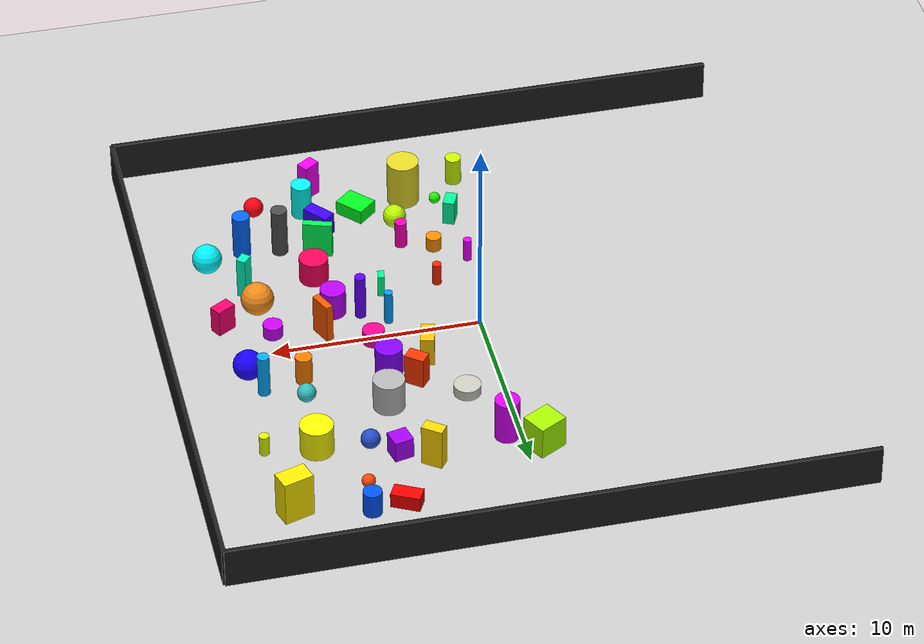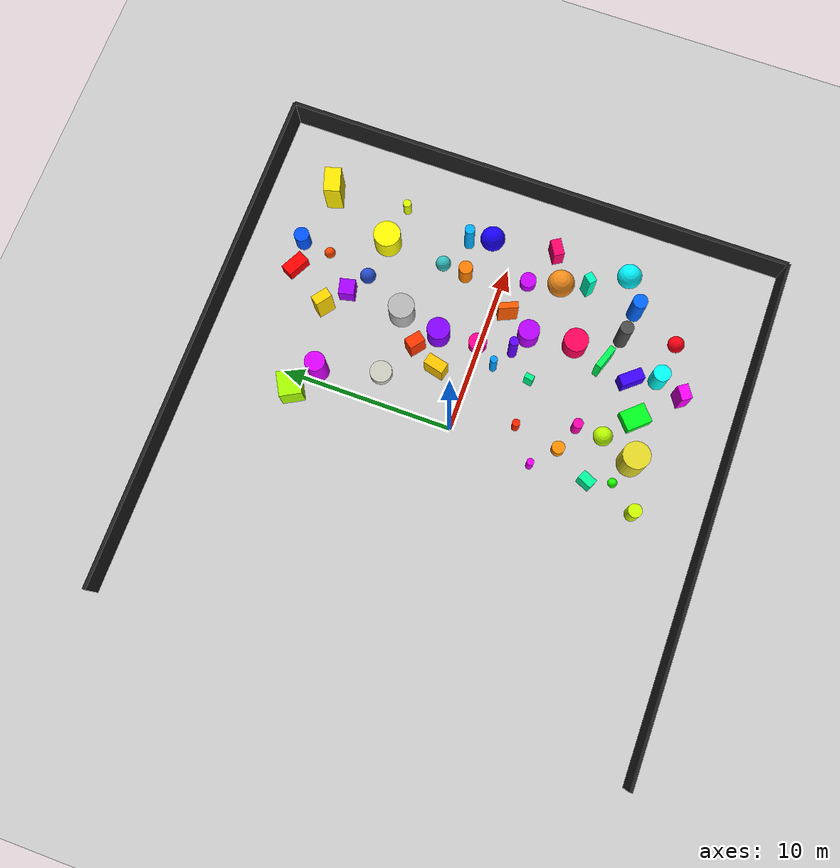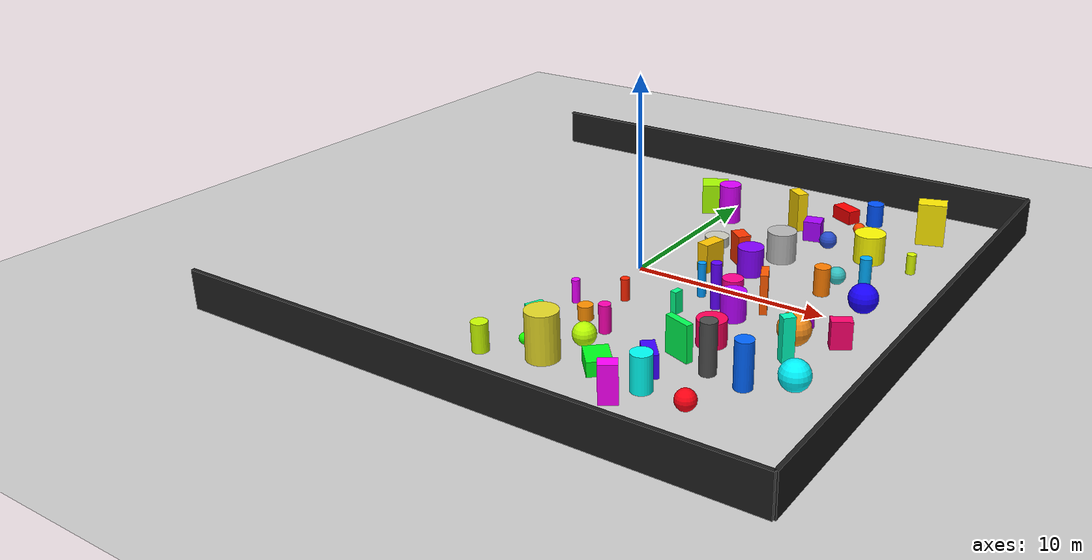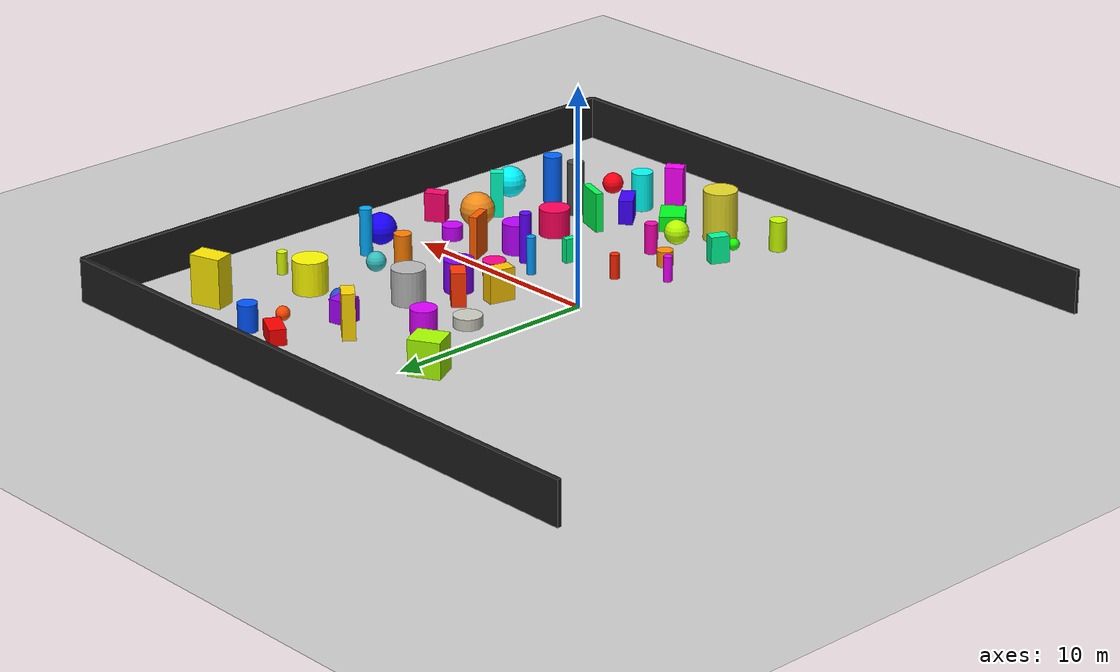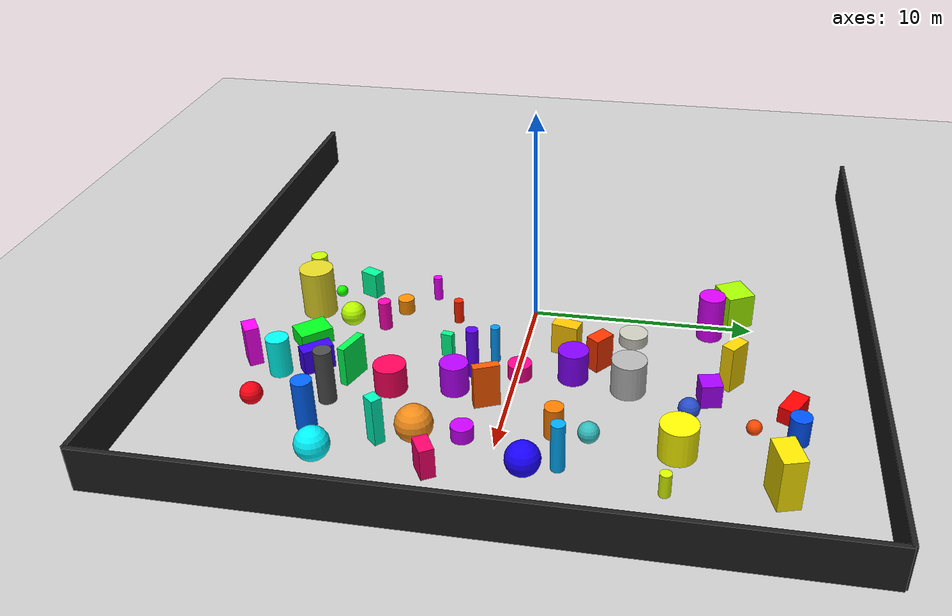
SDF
<sdf version="1.6">
 <world name="colorful_obstacle_world">
  <include><uri>model://ground_plane</uri></include>
  <include><uri>model://sun</uri></include>
  <model name="wall_north">
   <static>true</static>
   <pose>15 0 1.0 0 0 0</pose>
   <link name="link">
    <collision name="c"><geometry><box><size>0.2 30 2.0</size></box></geometry></collision>
    <visual name="v">
     <geometry><box><size>0.2 30 2.0</size></box></geometry>
     <material>
      <script><uri>file://media/materials/scripts/gazebo.material</uri><name>Gazebo/Black</name></script>
     </material>
    </visual>
   </link>
  </model>
  <model name="wall_east">
   <static>true</static>
   <pose>0 15 1.0 0 0 0</pose>
   <link name="link">
    <collision name="c"><geometry><box><size>30 0.2 2.0</size></box></geometry></collision>
    <visual name="v">
     <geometry><box><size>30 0.2 2.0</size></box></geometry>
     <material>
      <script><uri>file://media/materials/scripts/gazebo.material</uri><name>Gazebo/Black</name></script>
     </material>
    </visual>
   </link>
  </model>
  <model name="wall_west">
   <static>true</static>
   <pose>0 -15 1.0 0 0 0</pose>
   <link name="link">
    <collision name="c"><geometry><box><size>30 0.2 2.0</size></box></geometry></collision>
    <visual name="v">
     <geometry><box><size>30 0.2 2.0</size></box></geometry>
     <material>
      <script><uri>file://media/materials/scripts/gazebo.material</uri><name>Gazebo/Black</name></script>
     </material>
    </visual>
   </link>
  </model>
  <model name="obstacle_2">
   <static>true</static>
   <pose>6.871002443166621 7.462403809613775 0.4595691033934538 0 0 0</pose>
   <link name="link">
    <collision name="c"><geometry><sphere><radius>0.4595691033934538</radius></sphere></geometry></collision>
    <visual name="v">
     <geometry><sphere><radius>0.4595691033934538</radius></sphere></geometry>
     <material>
      <script><uri>file://media/materials/scripts/gazebo.material</uri><name>Gazebo/Blue</name></script>
     </material>
    </visual>
   </link>
  </model>
  <model name="obstacle_3">
   <static>true</static>
   <pose>1.5164349646483188 -10.133740081631483 1.1599548474359662 0 0 0</pose>
   <link name="link">
    <collision name="c">
     <geometry>
      <cylinder><radius>0.7750553635431889</radius><length>2.3199096948719324</length></cylinder>
     </geometry>
    </collision>
    <visual name="v">
     <geometry>
      <cylinder><radius>0.7750553635431889</radius><length>2.3199096948719324</length></cylinder>
     </geometry>
     <material>
      <script><uri>file://media/materials/scripts/gazebo.material</uri><name>Gazebo/Yellow</name></script>
     </material>
    </visual>
   </link>
  </model>
  <model name="obstacle_5">
   <static>true</static>
   <pose>10.052263835685423 -3.2112918898191385 0.787801593466783 0 0 0</pose>
   <link name="link">
    <collision name="c"><geometry><sphere><radius>0.787801593466783</radius></sphere></geometry></collision>
    <visual name="v">
     <geometry><sphere><radius>0.787801593466783</radius></sphere></geometry>
     <material>
      <script><uri>file://media/materials/scripts/gazebo.material</uri><name>Gazebo/Orange</name></script>
     </material>
    </visual>
   </link>
  </model>
  <model name="obstacle_6">
   <static>true</static>
   <pose>9.058558225604688 3.6154478280537017 0.4456063688251496 0 0 0</pose>
   <link name="link">
    <collision name="c"><geometry><sphere><radius>0.4456063688251496</radius></sphere></geometry></collision>
    <visual name="v">
     <geometry><sphere><radius>0.4456063688251496</radius></sphere></geometry>
     <material>
      <script><uri>file://media/materials/scripts/gazebo.material</uri><name>Gazebo/Turquoise</name></script>
     </material>
    </visual>
   </link>
  </model>
  <model name="obstacle_8">
   <static>true</static>
   <pose>8.147113461541874 -7.489553556831666 1.2487800928988428 0 0 0</pose>
   <link name="link">
    <collision name="c">
     <geometry>
      <cylinder><radius>0.3872695943996788</radius><length>2.4975601857976857</length></cylinder>
     </geometry>
    </collision>
    <visual name="v">
     <geometry>
      <cylinder><radius>0.3872695943996788</radius><length>2.4975601857976857</length></cylinder>
     </geometry>
     <material>
      <script><uri>file://media/materials/scripts/gazebo.material</uri><name>Gazebo/DarkGrey</name></script>
     </material>
    </visual>
   </link>
  </model>
  <model name="obstacle_12">
   <static>true</static>
   <pose>1.7315914127342822 4.750978672225656 0.2542465124365567 0 0 0</pose>
   <link name="link">
    <collision name="c">
     <geometry>
      <cylinder><radius>0.6424154166695375</radius><length>0.5084930248731134</length></cylinder>
     </geometry>
    </collision>
    <visual name="v">
     <geometry>
      <cylinder><radius>0.6424154166695375</radius><length>0.5084930248731134</length></cylinder>
     </geometry>
     <material>
      <script><uri>file://media/materials/scripts/gazebo.material</uri><name>Gazebo/PaintedWall</name></script>
     </material>
    </visual>
   </link>
  </model>
  <model name="obstacle_13">
   <static>true</static>
   <pose>5.447621350147745 4.850557821663433 0.7923545132728254 0 0 0</pose>
   <link name="link">
    <collision name="c">
     <geometry>
      <cylinder><radius>0.7523293349741393</radius><length>1.5847090265456507</length></cylinder>
     </geometry>
    </collision>
    <visual name="v">
     <geometry>
      <cylinder><radius>0.7523293349741393</radius><length>1.5847090265456507</length></cylinder>
     </geometry>
     <material>
      <script><uri>file://media/materials/scripts/gazebo.material</uri><name>Gazebo/BuildingFrame</name></script>
     </material>
    </visual>
   </link>
  </model>
  <model name="obstacle_15">
   <static>true</static>
   <pose>6.093371528538579 11.665953664885667 0.37245010629081987 0 0 1.0901495579602125</pose>
   <link name="link">
    <collision name="c">
     <geometry><box><size>0.743070686655676 1.3814643568321343 0.7449002125816397</size></box></geometry>
    </collision>
    <visual name="v">
     <geometry><box><size>0.743070686655676 1.3814643568321343 0.7449002125816397</size></box></geometry>
     <material><ambient>1 0.0 0 1.0</ambient><diffuse>1 0.0 0 1.0</diffuse></material>
    </visual>
   </link>
  </model>
  <model name="obstacle_17">
   <static>true</static>
   <pose>1.325772126019352 -3.4354408230898734 0.5628320105586656 0 0 0</pose>
   <link name="link">
    <collision name="c">
     <geometry>
      <cylinder><radius>0.22051269177308558</radius><length>1.1256640211173312</length></cylinder>
     </geometry>
    </collision>
    <visual name="v">
     <geometry>
      <cylinder><radius>0.22051269177308558</radius><length>1.1256640211173312</length></cylinder>
     </geometry>
     <material>
      <ambient>1 0.14117647058823524 0 1.0</ambient>
      <diffuse>1 0.14117647058823524 0 1.0</diffuse>
     </material>
    </visual>
   </link>
  </model>
  <model name="obstacle_18">
   <static>true</static>
   <pose>3.826197518115052 3.4372369911886267 0.7883732737479082 0 0 0.8991267906517547</pose>
   <link name="link">
    <collision name="c">
     <geometry><box><size>0.663344641370287 0.9712194446429214 1.5767465474958164</size></box></geometry>
    </collision>
    <visual name="v">
     <geometry><box><size>0.663344641370287 0.9712194446429214 1.5767465474958164</size></box></geometry>
     <material>
      <ambient>1 0.21176470588235297 0 1.0</ambient>
      <diffuse>1 0.21176470588235297 0 1.0</diffuse>
     </material>
    </visual>
   </link>
  </model>
  <model name="obstacle_19">
   <static>true</static>
   <pose>7.515463405429507 10.088654732925587 0.3214041588658102 0 0 0</pose>
   <link name="link">
    <collision name="c"><geometry><sphere><radius>0.3214041588658102</radius></sphere></geometry></collision>
    <visual name="v">
     <geometry><sphere><radius>0.3214041588658102</radius></sphere></geometry>
     <material>
      <ambient>1 0.2823529411764706 0 1.0</ambient>
      <diffuse>1 0.2823529411764706 0 1.0</diffuse>
     </material>
    </visual>
   </link>
  </model>
  <model name="obstacle_20">
   <static>true</static>
   <pose>7.366288027645126 -0.8656854448823772 0.995039706988569 0 0 0.41884372606489045</pose>
   <link name="link">
    <collision name="c">
     <geometry><box><size>0.36397490283762624 1.1260823554076904 1.990079413977138</size></box></geometry>
    </collision>
    <visual name="v">
     <geometry><box><size>0.36397490283762624 1.1260823554076904 1.990079413977138</size></box></geometry>
     <material>
      <ambient>1 0.3529411764705882 0 1.0</ambient>
      <diffuse>1 0.3529411764705882 0 1.0</diffuse>
     </material>
    </visual>
   </link>
  </model>
  <model name="obstacle_22">
   <static>true</static>
   <pose>8.902482420358275 2.2012407443148767 0.7141178315493268 0 0 0</pose>
   <link name="link">
    <collision name="c">
     <geometry>
      <cylinder><radius>0.3990837151185682</radius><length>1.4282356630986537</length></cylinder>
     </geometry>
    </collision>
    <visual name="v">
     <geometry>
      <cylinder><radius>0.3990837151185682</radius><length>1.4282356630986537</length></cylinder>
     </geometry>
     <material>
      <ambient>1 0.49411764705882355 0 1.0</ambient>
      <diffuse>1 0.49411764705882355 0 1.0</diffuse>
     </material>
    </visual>
   </link>
  </model>
  <model name="obstacle_23">
   <static>true</static>
   <pose>0.8940980374158798 -6.082508689060838 0.35900783084016674 0 0 0</pose>
   <link name="link">
    <collision name="c">
     <geometry>
      <cylinder><radius>0.3734763596124898</radius><length>0.7180156616803335</length></cylinder>
     </geometry>
    </collision>
    <visual name="v">
     <geometry>
      <cylinder><radius>0.3734763596124898</radius><length>0.7180156616803335</length></cylinder>
     </geometry>
     <material>
      <ambient>1 0.5647058823529412 0 1.0</ambient>
      <diffuse>1 0.5647058823529412 0 1.0</diffuse>
     </material>
    </visual>
   </link>
  </model>
  <model name="obstacle_26">
   <static>true</static>
   <pose>2.9629941372433244 1.8703506917924901 0.7503509435351398 0 0 1.3299789343963184</pose>
   <link name="link">
    <collision name="c">
     <geometry><box><size>1.2004264051913236 0.6605551870482091 1.5007018870702795</size></box></geometry>
    </collision>
    <visual name="v">
     <geometry><box><size>1.2004264051913236 0.6605551870482091 1.5007018870702795</size></box></geometry>
     <material>
      <ambient>1 0.7764705882352941 0 1.0</ambient>
      <diffuse>1 0.7764705882352941 0 1.0</diffuse>
     </material>
    </visual>
   </link>
  </model>
  <model name="obstacle_27">
   <static>true</static>
   <pose>4.296089687671092 9.156674425913245 1.0561367411559621 0 0 0.9294674477253762</pose>
   <link name="link">
    <collision name="c">
     <geometry><box><size>0.5837977649261117 1.017943470494364 2.1122734823119242</size></box></geometry>
    </collision>
    <visual name="v">
     <geometry><box><size>0.5837977649261117 1.017943470494364 2.1122734823119242</size></box></geometry>
     <material>
      <ambient>1 0.8470588235294118 0 1.0</ambient>
      <diffuse>1 0.8470588235294118 0 1.0</diffuse>
     </material>
    </visual>
   </link>
  </model>
  <model name="obstacle_28">
   <static>true</static>
   <pose>11.091518896146312 11.107371873234488 1.133406417208728 0 0 1.8752800478882998</pose>
   <link name="link">
    <collision name="c">
     <geometry><box><size>0.9547894291016981 1.4620261514298927 2.266812834417456</size></box></geometry>
    </collision>
    <visual name="v">
     <geometry><box><size>0.9547894291016981 1.4620261514298927 2.266812834417456</size></box></geometry>
     <material>
      <ambient>1 0.9176470588235295 0 1.0</ambient>
      <diffuse>1 0.9176470588235295 0 1.0</diffuse>
     </material>
    </visual>
   </link>
  </model>
  <model name="obstacle_29">
   <static>true</static>
   <pose>9.289551411786388 7.136378456929336 0.7581892050764009 0 0 0</pose>
   <link name="link">
    <collision name="c">
     <geometry>
      <cylinder><radius>0.7852694467993337</radius><length>1.5163784101528017</length></cylinder>
     </geometry>
    </collision>
    <visual name="v">
     <geometry>
      <cylinder><radius>0.7852694467993337</radius><length>1.5163784101528017</length></cylinder>
     </geometry>
     <material>
      <ambient>1 0.9882352941176471 0 1.0</ambient>
      <diffuse>1 0.9882352941176471 0 1.0</diffuse>
     </material>
    </visual>
   </link>
  </model>
  <model name="obstacle_31">
   <static>true</static>
   <pose>11.655328918172131 6.79011432449353 0.5142657875563611 0 0 0</pose>
   <link name="link">
    <collision name="c">
     <geometry>
      <cylinder><radius>0.23796573550268202</radius><length>1.0285315751127222</length></cylinder>
     </geometry>
    </collision>
    <visual name="v">
     <geometry>
      <cylinder><radius>0.23796573550268202</radius><length>1.0285315751127222</length></cylinder>
     </geometry>
     <material>
      <ambient>0.8705882352941177 1 0 1.0</ambient>
      <diffuse>0.8705882352941177 1 0 1.0</diffuse>
     </material>
    </visual>
   </link>
  </model>
  <model name="obstacle_32">
   <static>true</static>
   <pose>-1.1963006581830182 -11.046775636713917 0.7040476604807189 0 0 0</pose>
   <link name="link">
    <collision name="c">
     <geometry>
      <cylinder><radius>0.3926136347743306</radius><length>1.4080953209614377</length></cylinder>
     </geometry>
    </collision>
    <visual name="v">
     <geometry>
      <cylinder><radius>0.3926136347743306</radius><length>1.4080953209614377</length></cylinder>
     </geometry>
     <material><ambient>0.8 1 0 1.0</ambient><diffuse>0.8 1 0 1.0</diffuse></material>
    </visual>
   </link>
  </model>
  <model name="obstacle_33">
   <static>true</static>
   <pose>2.3498432448573077 -8.221245884879233 0.5576420701433116 0 0 0</pose>
   <link name="link">
    <collision name="c"><geometry><sphere><radius>0.5576420701433116</radius></sphere></geometry></collision>
    <visual name="v">
     <geometry><sphere><radius>0.5576420701433116</radius></sphere></geometry>
     <material>
      <ambient>0.7294117647058824 1 0 1.0</ambient>
      <diffuse>0.7294117647058824 1 0 1.0</diffuse>
     </material>
    </visual>
   </link>
  </model>
  <model name="obstacle_34">
   <static>true</static>
   <pose>-0.8488032611807377 9.146121246037993 0.8164870306332044 0 0 2.071465376063041</pose>
   <link name="link">
    <collision name="c">
     <geometry><box><size>1.2835717399054458 1.4413751539168993 1.6329740612664088</size></box></geometry>
    </collision>
    <visual name="v">
     <geometry><box><size>1.2835717399054458 1.4413751539168993 1.6329740612664088</size></box></geometry>
     <material>
      <ambient>0.6588235294117648 1 0 1.0</ambient>
      <diffuse>0.6588235294117648 1 0 1.0</diffuse>
     </material>
    </visual>
   </link>
  </model>
  <model name="obstacle_42">
   <static>true</static>
   <pose>0.07716506899742726 -9.536346604121363 0.27598091387926027 0 0 0</pose>
   <link name="link">
    <collision name="c"><geometry><sphere><radius>0.27598091387926027</radius></sphere></geometry></collision>
    <visual name="v">
     <geometry><sphere><radius>0.27598091387926027</radius></sphere></geometry>
     <material>
      <ambient>0.09411764705882342 1 0 1.0</ambient>
      <diffuse>0.09411764705882342 1 0 1.0</diffuse>
     </material>
    </visual>
   </link>
  </model>
  <model name="obstacle_45">
   <static>true</static>
   <pose>3.9917619160250766 -9.601662222613902 0.3567389897024016 0 0 0.7345310204684006</pose>
   <link name="link">
    <collision name="c">
     <geometry><box><size>1.1526904756320582 1.4971055487193372 0.7134779794048032</size></box></geometry>
    </collision>
    <visual name="v">
     <geometry><box><size>1.1526904756320582 1.4971055487193372 0.7134779794048032</size></box></geometry>
     <material>
      <ambient>0 1 0.11764705882352944 1.0</ambient>
      <diffuse>0 1 0.11764705882352944 1.0</diffuse>
     </material>
    </visual>
   </link>
  </model>
  <model name="obstacle_48">
   <static>true</static>
   <pose>6.392817961900366 -6.9138240735148155 0.9151023032492855 0 0 1.2368804177506638</pose>
   <link name="link">
    <collision name="c">
     <geometry><box><size>0.3502752513106955 1.4151033486295854 1.830204606498571</size></box></geometry>
    </collision>
    <visual name="v">
     <geometry><box><size>0.3502752513106955 1.4151033486295854 1.830204606498571</size></box></geometry>
     <material>
      <ambient>0 1 0.32941176470588207 1.0</ambient>
      <diffuse>0 1 0.32941176470588207 1.0</diffuse>
     </material>
    </visual>
   </link>
  </model>
  <model name="obstacle_51">
   <static>true</static>
   <pose>4.077914817872937 -3.284554960914601 0.5649009635435585 0 0 1.3905449700509573</pose>
   <link name="link">
    <collision name="c">
     <geometry><box><size>0.5074693560003101 0.3232242561120787 1.129801927087117</size></box></geometry>
    </collision>
    <visual name="v">
     <geometry><box><size>0.5074693560003101 0.3232242561120787 1.129801927087117</size></box></geometry>
     <material>
      <ambient>0 1 0.5411764705882351 1.0</ambient>
      <diffuse>0 1 0.5411764705882351 1.0</diffuse>
     </material>
    </visual>
   </link>
  </model>
  <model name="obstacle_52">
   <static>true</static>
   <pose>-0.3830246344873718 -8.103981192189966 0.6249427702991468 0 0 1.151285472236181</pose>
   <link name="link">
    <collision name="c">
     <geometry><box><size>0.8719247517122375 0.5614017266017137 1.2498855405982936</size></box></geometry>
    </collision>
    <visual name="v">
     <geometry><box><size>0.8719247517122375 0.5614017266017137 1.2498855405982936</size></box></geometry>
     <material><ambient>0 1 0.611764705882353 1.0</ambient><diffuse>0 1 0.611764705882353 1.0</diffuse></material>
    </visual>
   </link>
  </model>
  <model name="obstacle_54">
   <static>true</static>
   <pose>10.39667865920753 -4.697654513797622 1.0714210839102452 0 0 0.8520475784267526</pose>
   <link name="link">
    <collision name="c">
     <geometry><box><size>0.5875439115576166 0.46824335077528934 2.1428421678204903</size></box></geometry>
    </collision>
    <visual name="v">
     <geometry><box><size>0.5875439115576166 0.46824335077528934 2.1428421678204903</size></box></geometry>
     <material>
      <ambient>0 1 0.7529411764705882 1.0</ambient>
      <diffuse>0 1 0.7529411764705882 1.0</diffuse>
     </material>
    </visual>
   </link>
  </model>
  <model name="obstacle_57">
   <static>true</static>
   <pose>6.55626907448611 -10.151503224764202 0.8860309235307883 0 0 0</pose>
   <link name="link">
    <collision name="c">
     <geometry>
      <cylinder><radius>0.4943462938816528</radius><length>1.7720618470615765</length></cylinder>
     </geometry>
    </collision>
    <visual name="v">
     <geometry>
      <cylinder><radius>0.4943462938816528</radius><length>1.7720618470615765</length></cylinder>
     </geometry>
     <material>
      <ambient>0 1 0.9647058823529409 1.0</ambient>
      <diffuse>0 1 0.9647058823529409 1.0</diffuse>
     </material>
    </visual>
   </link>
  </model>
  <model name="obstacle_58">
   <static>true</static>
   <pose>11.81521027622679 -6.79780234941678 0.71075358204357 0 0 0</pose>
   <link name="link">
    <collision name="c"><geometry><sphere><radius>0.71075358204357</radius></sphere></geometry></collision>
    <visual name="v">
     <geometry><sphere><radius>0.71075358204357</radius></sphere></geometry>
     <material>
      <ambient>0 0.9647058823529409 1 1.0</ambient>
      <diffuse>0 0.9647058823529409 1 1.0</diffuse>
     </material>
    </visual>
   </link>
  </model>
  <model name="obstacle_62">
   <static>true</static>
   <pose>10.86966246834017 2.653134248573748 1.0889673021690114 0 0 0</pose>
   <link name="link">
    <collision name="c">
     <geometry><cylinder><radius>0.28840340817974</radius><length>2.1779346043380228</length></cylinder></geometry>
    </collision>
    <visual name="v">
     <geometry><cylinder><radius>0.28840340817974</radius><length>2.1779346043380228</length></cylinder></geometry>
     <material>
      <ambient>0 0.6823529411764704 1 1.0</ambient>
      <diffuse>0 0.6823529411764704 1 1.0</diffuse>
     </material>
    </visual>
   </link>
  </model>
  <model name="obstacle_63">
   <static>true</static>
   <pose>4.180050139833689 -1.116981090824055 0.8720600206636925 0 0 0</pose>
   <link name="link">
    <collision name="c">
     <geometry>
      <cylinder><radius>0.20662524482144828</radius><length>1.744120041327385</length></cylinder>
     </geometry>
    </collision>
    <visual name="v">
     <geometry>
      <cylinder><radius>0.20662524482144828</radius><length>1.744120041327385</length></cylinder>
     </geometry>
     <material><ambient>0 0.611764705882353 1 1.0</ambient><diffuse>0 0.611764705882353 1 1.0</diffuse></material>
    </visual>
   </link>
  </model>
  <model name="obstacle_66">
   <static>true</static>
   <pose>9.956024501401984 -7.741410709271314 1.1322637261439348 0 0 0</pose>
   <link name="link">
    <collision name="c">
     <geometry>
      <cylinder><radius>0.42690086424895435</radius><length>2.2645274522878696</length></cylinder>
     </geometry>
    </collision>
    <visual name="v">
     <geometry>
      <cylinder><radius>0.42690086424895435</radius><length>2.2645274522878696</length></cylinder>
     </geometry>
     <material>
      <ambient>0 0.3999999999999999 1 1.0</ambient>
      <diffuse>0 0.3999999999999999 1 1.0</diffuse>
     </material>
    </visual>
   </link>
  </model>
  <model name="obstacle_67">
   <static>true</static>
   <pose>7.701651474479945 11.822632685833373 0.6226204214526337 0 0 0</pose>
   <link name="link">
    <collision name="c">
     <geometry>
      <cylinder><radius>0.4422726943481152</radius><length>1.2452408429052675</length></cylinder>
     </geometry>
    </collision>
    <visual name="v">
     <geometry>
      <cylinder><radius>0.4422726943481152</radius><length>1.2452408429052675</length></cylinder>
     </geometry>
     <material>
      <ambient>0 0.32941176470588207 1 1.0</ambient>
      <diffuse>0 0.32941176470588207 1 1.0</diffuse>
     </material>
    </visual>
   </link>
  </model>
  <model name="obstacle_73">
   <static>true</static>
   <pose>11.362410627917527 1.383218486728655 0.7200730133046285 0 0 0</pose>
   <link name="link">
    <collision name="c"><geometry><sphere><radius>0.7200730133046285</radius></sphere></geometry></collision>
    <visual name="v">
     <geometry><sphere><radius>0.7200730133046285</radius></sphere></geometry>
     <material>
      <ambient>0.09411764705882408 0 1 1.0</ambient>
      <diffuse>0.09411764705882408 0 1 1.0</diffuse>
     </material>
    </visual>
   </link>
  </model>
  <model name="obstacle_75">
   <static>true</static>
   <pose>5.997164546282175 -8.671655642357672 0.5695548599451673 0 0 0.696397823950396</pose>
   <link name="link">
    <collision name="c">
     <geometry><box><size>0.6592247768751287 1.3839385602685468 1.1391097198903346</size></box></geometry>
    </collision>
    <visual name="v">
     <geometry><box><size>0.6592247768751287 1.3839385602685468 1.1391097198903346</size></box></geometry>
     <material>
      <ambient>0.23529411764705888 0 1 1.0</ambient>
      <diffuse>0.23529411764705888 0 1 1.0</diffuse>
     </material>
    </visual>
   </link>
  </model>
  <model name="obstacle_77">
   <static>true</static>
   <pose>5.373204367666254 -1.8659062859000564 1.1562421959999991 0 0 0</pose>
   <link name="link">
    <collision name="c">
     <geometry>
      <cylinder><radius>0.2657079053407603</radius><length>2.3124843919999982</length></cylinder>
     </geometry>
    </collision>
    <visual name="v">
     <geometry>
      <cylinder><radius>0.2657079053407603</radius><length>2.3124843919999982</length></cylinder>
     </geometry>
     <material>
      <ambient>0.37647058823529367 0 1 1.0</ambient>
      <diffuse>0.37647058823529367 0 1 1.0</diffuse>
     </material>
    </visual>
   </link>
  </model>
  <model name="obstacle_79">
   <static>true</static>
   <pose>4.931109450027815 2.432752575248694 0.7298904054593807 0 0 0</pose>
   <link name="link">
    <collision name="c">
     <geometry>
      <cylinder><radius>0.6576445138666396</radius><length>1.4597808109187613</length></cylinder>
     </geometry>
    </collision>
    <visual name="v">
     <geometry>
      <cylinder><radius>0.6576445138666396</radius><length>1.4597808109187613</length></cylinder>
     </geometry>
     <material>
      <ambient>0.5176470588235293 0 1 1.0</ambient>
      <diffuse>0.5176470588235293 0 1 1.0</diffuse>
     </material>
    </visual>
   </link>
  </model>
  <model name="obstacle_81">
   <static>true</static>
   <pose>5.656279116283017 8.253075238430831 0.5375924942798846 0 0 0.22856026688839173</pose>
   <link name="link">
    <collision name="c">
     <geometry><box><size>0.9237228530304218 0.9009057231451916 1.0751849885597693</size></box></geometry>
    </collision>
    <visual name="v">
     <geometry><box><size>0.9237228530304218 0.9009057231451916 1.0751849885597693</size></box></geometry>
     <material>
      <ambient>0.6588235294117641 0 1 1.0</ambient>
      <diffuse>0.6588235294117641 0 1 1.0</diffuse>
     </material>
    </visual>
   </link>
  </model>
  <model name="obstacle_82">
   <static>true</static>
   <pose>6.583751203234375 -2.3994691797328436 0.7002887266652322 0 0 0</pose>
   <link name="link">
    <collision name="c">
     <geometry>
      <cylinder><radius>0.6129908394558523</radius><length>1.4005774533304645</length></cylinder>
     </geometry>
    </collision>
    <visual name="v">
     <geometry>
      <cylinder><radius>0.6129908394558523</radius><length>1.4005774533304645</length></cylinder>
     </geometry>
     <material>
      <ambient>0.7294117647058824 0 1 1.0</ambient>
      <diffuse>0.7294117647058824 0 1 1.0</diffuse>
     </material>
    </visual>
   </link>
  </model>
  <model name="obstacle_83">
   <static>true</static>
   <pose>9.678965221885516 -1.3663835496038654 0.3280387007658627 0 0 0</pose>
   <link name="link">
    <collision name="c">
     <geometry>
      <cylinder><radius>0.47021694514557105</radius><length>0.6560774015317254</length></cylinder>
     </geometry>
    </collision>
    <visual name="v">
     <geometry>
      <cylinder><radius>0.47021694514557105</radius><length>0.6560774015317254</length></cylinder>
     </geometry>
     <material>
      <ambient>0.7999999999999998 0 1 1.0</ambient>
      <diffuse>0.7999999999999998 0 1 1.0</diffuse>
     </material>
    </visual>
   </link>
  </model>
  <model name="obstacle_84">
   <static>true</static>
   <pose>0.6471629889768664 8.125114844851712 1.0673097433734475 0 0 0</pose>
   <link name="link">
    <collision name="c">
     <geometry>
      <cylinder><radius>0.5839270329672801</radius><length>2.134619486746895</length></cylinder>
     </geometry>
    </collision>
    <visual name="v">
     <geometry>
      <cylinder><radius>0.5839270329672801</radius><length>2.134619486746895</length></cylinder>
     </geometry>
     <material>
      <ambient>0.8705882352941181 0 1 1.0</ambient>
      <diffuse>0.8705882352941181 0 1 1.0</diffuse>
     </material>
    </visual>
   </link>
  </model>
  <model name="obstacle_85">
   <static>true</static>
   <pose>-0.5017729396646011 -4.877394468902025 0.5848370284576606 0 0 0</pose>
   <link name="link">
    <collision name="c">
     <geometry>
      <cylinder><radius>0.20542150580998225</radius><length>1.1696740569153212</length></cylinder>
     </geometry>
    </collision>
    <visual name="v">
     <geometry>
      <cylinder><radius>0.20542150580998225</radius><length>1.1696740569153212</length></cylinder>
     </geometry>
     <material>
      <ambient>0.9411764705882355 0 1 1.0</ambient>
      <diffuse>0.9411764705882355 0 1 1.0</diffuse>
     </material>
    </visual>
   </link>
  </model>
  <model name="obstacle_86">
   <static>true</static>
   <pose>5.913668933121972 -11.62865877259032 0.9187945201489996 0 0 0.593858903674272</pose>
   <link name="link">
    <collision name="c">
     <geometry><box><size>0.8586817203809916 0.6113439681672472 1.8375890402979993</size></box></geometry>
    </collision>
    <visual name="v">
     <geometry><box><size>0.8586817203809916 0.6113439681672472 1.8375890402979993</size></box></geometry>
     <material>
      <ambient>1 0 0.9882352941176471 1.0</ambient>
      <diffuse>1 0 0.9882352941176471 1.0</diffuse>
     </material>
    </visual>
   </link>
  </model>
  <model name="obstacle_90">
   <static>true</static>
   <pose>2.375727083666174 -6.668314871239398 0.6948633025268055 0 0 0</pose>
   <link name="link">
    <collision name="c">
     <geometry>
      <cylinder><radius>0.2940007929644445</radius><length>1.389726605053611</length></cylinder>
     </geometry>
    </collision>
    <visual name="v">
     <geometry>
      <cylinder><radius>0.2940007929644445</radius><length>1.389726605053611</length></cylinder>
     </geometry>
     <material>
      <ambient>1 0 0.7058823529411766 1.0</ambient>
      <diffuse>1 0 0.7058823529411766 1.0</diffuse>
     </material>
    </visual>
   </link>
  </model>
  <model name="obstacle_92">
   <static>true</static>
   <pose>5.181666314814528 0.1542340478394788 0.3496500565718953 0 0 0</pose>
   <link name="link">
    <collision name="c">
     <geometry>
      <cylinder><radius>0.5253781040003768</radius><length>0.6993001131437906</length></cylinder>
     </geometry>
    </collision>
    <visual name="v">
     <geometry>
      <cylinder><radius>0.5253781040003768</radius><length>0.6993001131437906</length></cylinder>
     </geometry>
     <material><ambient>1 0 0.564705882352941 1.0</ambient><diffuse>1 0 0.564705882352941 1.0</diffuse></material>
    </visual>
   </link>
  </model>
  <model name="obstacle_94">
   <static>true</static>
   <pose>11.864536578425628 -2.3385638763522305 0.6834245016468581 0 0 2.1223508999407334</pose>
   <link name="link">
    <collision name="c">
     <geometry><box><size>0.6100510333149138 0.9732976774380766 1.3668490032937162</size></box></geometry>
    </collision>
    <visual name="v">
     <geometry><box><size>0.6100510333149138 0.9732976774380766 1.3668490032937162</size></box></geometry>
     <material>
      <ambient>1 0 0.42352941176470615 1.0</ambient>
      <diffuse>1 0 0.42352941176470615 1.0</diffuse>
     </material>
    </visual>
   </link>
  </model>
  <model name="obstacle_95">
   <static>true</static>
   <pose>6.966224692080509 -5.086331759269901 0.6289807051890026 0 0 0</pose>
   <link name="link">
    <collision name="c">
     <geometry>
      <cylinder><radius>0.7033508251289493</radius><length>1.2579614103780052</length></cylinder>
     </geometry>
    </collision>
    <visual name="v">
     <geometry>
      <cylinder><radius>0.7033508251289493</radius><length>1.2579614103780052</length></cylinder>
     </geometry>
     <material>
      <ambient>1 0 0.35294117647058876 1.0</ambient>
      <diffuse>1 0 0.35294117647058876 1.0</diffuse>
     </material>
    </visual>
   </link>
  </model>
  <model name="obstacle_99">
   <static>true</static>
   <pose>8.864008193281155 -10.519727202672092 0.4811714106564841 0 0 0</pose>
   <link name="link">
    <collision name="c"><geometry><sphere><radius>0.4811714106564841</radius></sphere></geometry></collision>
    <visual name="v">
     <geometry><sphere><radius>0.4811714106564841</radius></sphere></geometry>
     <material>
      <ambient>1 0 0.07058823529411828 1.0</ambient>
      <diffuse>1 0 0.07058823529411828 1.0</diffuse>
     </material>
    </visual>
   </link>
  </model>
 </world>
</sdf>
